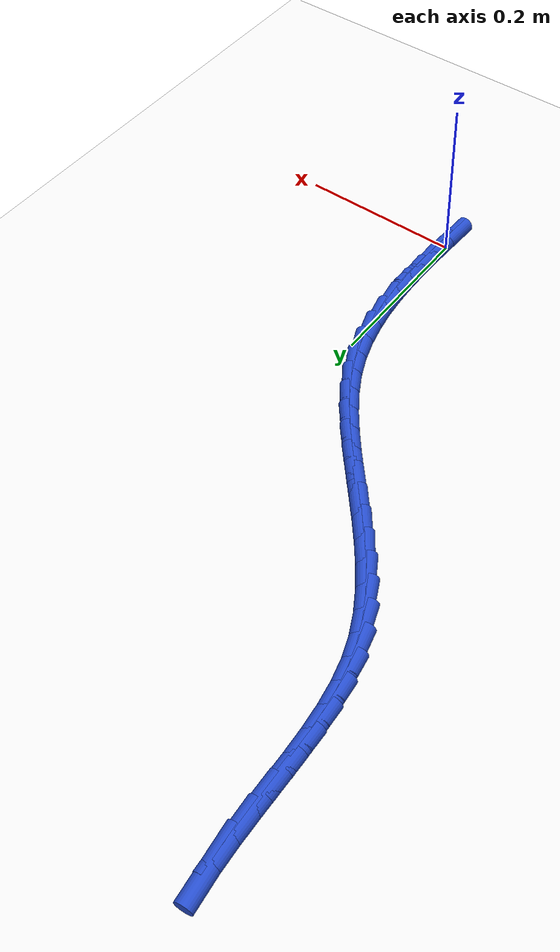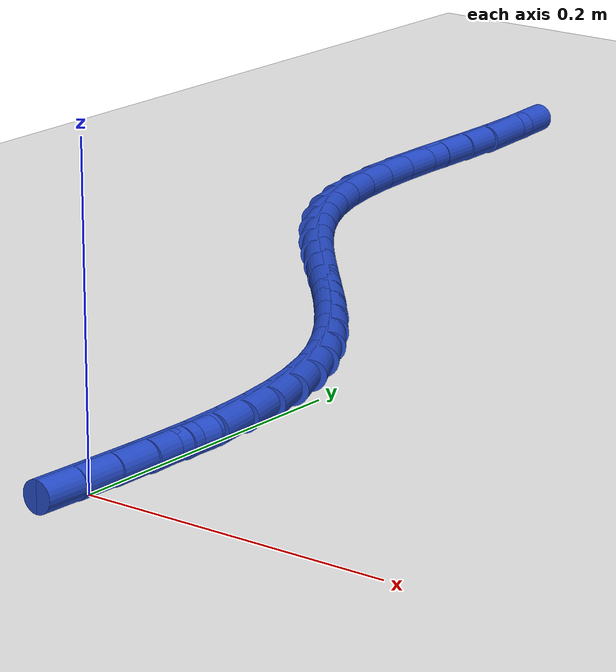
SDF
<sdf version="1.6">
 <world name="default">
  <model name="ground_plane">
   <static>1</static>
   <link name="link">
    <collision name="collision">
     <geometry><plane><normal>0 0 1</normal><size>100 100</size></plane></geometry>
     <surface><friction><ode><mu>100</mu><mu2>50</mu2></ode></friction></surface>
    </collision>
    <visual name="visual">
     <cast_shadows>0</cast_shadows>
     <geometry><plane><normal>0 0 1</normal><size>100 100</size></plane></geometry>
     <material>
      <script><uri>file://media/materials/scripts/gazebo.material</uri><name>Gazebo/WhiteGlow</name></script>
     </material>
    </visual>
   </link>
  </model>
  <model name="line">
   <link name="link_0">
    <pose>-3.577867169202165e-18 3.469446951953614e-17 0.01 0 1.57 1.5313810276846365</pose>
    <collision name="collision">
     <geometry><cylinder><radius>0.01</radius><length>0.08</length></cylinder></geometry>
    </collision>
    <visual name="visual">
     <material>
      <script><name>Gazebo/Blue</name><uri>file://media/materials/scripts/gazebo.material</uri></script>
     </material>
     <geometry><cylinder><radius>0.01</radius><length>0.08</length></cylinder></geometry>
    </visual>
   </link>
   <link name="link_1">
    <pose>0.0011078297223571646 0.02809203513526441 0.01 0 1.57 1.5508251258644656</pose>
    <collision name="collision">
     <geometry><cylinder><radius>0.01</radius><length>0.08</length></cylinder></geometry>
    </collision>
    <visual name="visual">
     <material>
      <script><name>Gazebo/Blue</name><uri>file://media/materials/scripts/gazebo.material</uri></script>
     </material>
     <geometry><cylinder><radius>0.01</radius><length>0.08</length></cylinder></geometry>
    </visual>
   </link>
   <link name="link_2">
    <pose>0.0016709253579382133 0.056283668287402444 0.01 0 1.57 -1.5616062555757853</pose>
    <collision name="collision">
     <geometry><cylinder><radius>0.01</radius><length>0.08</length></cylinder></geometry>
    </collision>
    <visual name="visual">
     <material>
      <script><name>Gazebo/Blue</name><uri>file://media/materials/scripts/gazebo.material</uri></script>
     </material>
     <geometry><cylinder><radius>0.01</radius><length>0.08</length></cylinder></geometry>
    </visual>
   </link>
   <link name="link_3">
    <pose>0.001412394904609176 0.08441437248474258 0.01 0 1.57 -1.5222109770309682</pose>
    <collision name="collision">
     <geometry><cylinder><radius>0.01</radius><length>0.08</length></cylinder></geometry>
    </collision>
    <visual name="visual">
     <material>
      <script><name>Gazebo/Blue</name><uri>file://media/materials/scripts/gazebo.material</uri></script>
     </material>
     <geometry><cylinder><radius>0.01</radius><length>0.08</length></cylinder></geometry>
    </visual>
   </link>
   <link name="link_4">
    <pose>5.5346360236090044e-05 0.11232362075561338 0.01 0 1.57 -1.4718567219086012</pose>
    <collision name="collision">
     <geometry><cylinder><radius>0.01</radius><length>0.08</length></cylinder></geometry>
    </collision>
    <visual name="visual">
     <material>
      <script><name>Gazebo/Blue</name><uri>file://media/materials/scripts/gazebo.material</uri></script>
     </material>
     <geometry><cylinder><radius>0.01</radius><length>0.08</length></cylinder></geometry>
    </visual>
   </link>
   <link name="link_5">
    <pose>-0.0026771122773150057 0.1398508861283433 0.01 0 1.57 -1.4097138829830382</pose>
    <collision name="collision">
     <geometry><cylinder><radius>0.01</radius><length>0.08</length></cylinder></geometry>
    </collision>
    <visual name="visual">
     <material>
      <script><name>Gazebo/Blue</name><uri>file://media/materials/scripts/gazebo.material</uri></script>
     </material>
     <geometry><cylinder><radius>0.01</radius><length>0.08</length></cylinder></geometry>
    </visual>
   </link>
   <link name="link_6">
    <pose>-0.00706187301017808 0.16683564163126086 0.01 0 1.57 -1.33502317986975</pose>
    <collision name="collision">
     <geometry><cylinder><radius>0.01</radius><length>0.08</length></cylinder></geometry>
    </collision>
    <visual name="visual">
     <material>
      <script><name>Gazebo/Blue</name><uri>file://media/materials/scripts/gazebo.material</uri></script>
     </material>
     <geometry><cylinder><radius>0.01</radius><length>0.08</length></cylinder></geometry>
    </visual>
   </link>
   <link name="link_7">
    <pose>-0.013375827840487098 0.1931173602926946 0.01 0 1.57 -1.2473711202386364</pose>
    <collision name="collision">
     <geometry><cylinder><radius>0.01</radius><length>0.08</length></cylinder></geometry>
    </collision>
    <visual name="visual">
     <material>
      <script><name>Gazebo/Blue</name><uri>file://media/materials/scripts/gazebo.material</uri></script>
     </material>
     <geometry><cylinder><radius>0.01</radius><length>0.08</length></cylinder></geometry>
    </visual>
   </link>
   <link name="link_8">
    <pose>-0.02189586877037602 0.21853551514097308 0.01 0 1.57 -1.147712825434415</pose>
    <collision name="collision">
     <geometry><cylinder><radius>0.01</radius><length>0.08</length></cylinder></geometry>
    </collision>
    <visual name="visual">
     <material>
      <script><name>Gazebo/Blue</name><uri>file://media/materials/scripts/gazebo.material</uri></script>
     </material>
     <geometry><cylinder><radius>0.01</radius><length>0.08</length></cylinder></geometry>
    </visual>
   </link>
   <link name="link_9">
    <pose>-0.0328832979421568 0.24293705310615804 0.01 0 1.57 -1.0514697278287726</pose>
    <collision name="collision">
     <geometry><cylinder><radius>0.01</radius><length>0.08</length></cylinder></geometry>
    </collision>
    <visual name="visual">
     <material>
      <script><name>Gazebo/Blue</name><uri>file://media/materials/scripts/gazebo.material</uri></script>
     </material>
     <geometry><cylinder><radius>0.01</radius><length>0.08</length></cylinder></geometry>
    </visual>
   </link>
   <link name="link_10">
    <pose>-0.04625783000817345 0.26633268085461137 0.01 0 1.57 -0.9733686503471793</pose>
    <collision name="collision">
     <geometry><cylinder><radius>0.01</radius><length>0.08</length></cylinder></geometry>
    </collision>
    <visual name="visual">
     <material>
      <script><name>Gazebo/Blue</name><uri>file://media/materials/scripts/gazebo.material</uri></script>
     </material>
     <geometry><cylinder><radius>0.01</radius><length>0.08</length></cylinder></geometry>
    </visual>
   </link>
   <link name="link_11">
    <pose>-0.06160676697657685 0.28889246629558135 0.01 0 1.57 -0.9136602222577828</pose>
    <collision name="collision">
     <geometry><cylinder><radius>0.01</radius><length>0.08</length></cylinder></geometry>
    </collision>
    <visual name="visual">
     <material>
      <script><name>Gazebo/Blue</name><uri>file://media/materials/scripts/gazebo.material</uri></script>
     </material>
     <geometry><cylinder><radius>0.01</radius><length>0.08</length></cylinder></geometry>
    </visual>
   </link>
   <link name="link_12">
    <pose>-0.07850365639127553 0.3107930713369355 0.01 0 1.57 -0.8713924782951618</pose>
    <collision name="collision">
     <geometry><cylinder><radius>0.01</radius><length>0.08</length></cylinder></geometry>
    </collision>
    <visual name="visual">
     <material>
      <script><name>Gazebo/Blue</name><uri>file://media/materials/scripts/gazebo.material</uri></script>
     </material>
     <geometry><cylinder><radius>0.01</radius><length>0.08</length></cylinder></geometry>
    </visual>
   </link>
   <link name="link_13">
    <pose>-0.0965220457961781 0.3322111578865413 0.01 0 1.57 -0.8455578197980537</pose>
    <collision name="collision">
     <geometry><cylinder><radius>0.01</radius><length>0.08</length></cylinder></geometry>
    </collision>
    <visual name="visual">
     <material>
      <script><name>Gazebo/Blue</name><uri>file://media/materials/scripts/gazebo.material</uri></script>
     </material>
     <geometry><cylinder><radius>0.01</radius><length>0.08</length></cylinder></geometry>
    </visual>
   </link>
   <link name="link_14">
    <pose>-0.11523548273519316 0.3533233878522667 0.01 0 1.57 -0.8354251950677716</pose>
    <collision name="collision">
     <geometry><cylinder><radius>0.01</radius><length>0.08</length></cylinder></geometry>
    </collision>
    <visual name="visual">
     <material>
      <script><name>Gazebo/Blue</name><uri>file://media/materials/scripts/gazebo.material</uri></script>
     </material>
     <geometry><cylinder><radius>0.01</radius><length>0.08</length></cylinder></geometry>
    </visual>
   </link>
   <link name="link_15">
    <pose>-0.13421751475222926 0.3743064231419791 0.01 0 1.57 -0.8407010361707644</pose>
    <collision name="collision">
     <geometry><cylinder><radius>0.01</radius><length>0.08</length></cylinder></geometry>
    </collision>
    <visual name="visual">
     <material>
      <script><name>Gazebo/Blue</name><uri>file://media/materials/scripts/gazebo.material</uri></script>
     </material>
     <geometry><cylinder><radius>0.01</radius><length>0.08</length></cylinder></geometry>
    </visual>
   </link>
   <link name="link_16">
    <pose>-0.15304168939119492 0.3953369256635461 0.01 0 1.57 -0.86158426462308</pose>
    <collision name="collision">
     <geometry><cylinder><radius>0.01</radius><length>0.08</length></cylinder></geometry>
    </collision>
    <visual name="visual">
     <material>
      <script><name>Gazebo/Blue</name><uri>file://media/materials/scripts/gazebo.material</uri></script>
     </material>
     <geometry><cylinder><radius>0.01</radius><length>0.08</length></cylinder></geometry>
    </visual>
   </link>
   <link name="link_17">
    <pose>-0.17128155419599891 0.4165915573248355 0.01 0 1.57 -0.8987427125662087</pose>
    <collision name="collision">
     <geometry><cylinder><radius>0.01</radius><length>0.08</length></cylinder></geometry>
    </collision>
    <visual name="visual">
     <material>
      <script><name>Gazebo/Blue</name><uri>file://media/materials/scripts/gazebo.material</uri></script>
     </material>
     <geometry><cylinder><radius>0.01</radius><length>0.08</length></cylinder></geometry>
    </visual>
   </link>
   <link name="link_18">
    <pose>-0.18851065671054962 0.4382469800337148 0.01 0 1.57 -0.953194710009889</pose>
    <collision name="collision">
     <geometry><cylinder><radius>0.01</radius><length>0.08</length></cylinder></geometry>
    </collision>
    <visual name="visual">
     <material>
      <script><name>Gazebo/Blue</name><uri>file://media/materials/scripts/gazebo.material</uri></script>
     </material>
     <geometry><cylinder><radius>0.01</radius><length>0.08</length></cylinder></geometry>
    </visual>
   </link>
   <link name="link_19">
    <pose>-0.2043025444787557 0.4604798556980516 0.01 0 1.57 -1.02603705719187</pose>
    <collision name="collision">
     <geometry><cylinder><radius>0.01</radius><length>0.08</length></cylinder></geometry>
    </collision>
    <visual name="visual">
     <material>
      <script><name>Gazebo/Blue</name><uri>file://media/materials/scripts/gazebo.material</uri></script>
     </material>
     <geometry><cylinder><radius>0.01</radius><length>0.08</length></cylinder></geometry>
    </visual>
   </link>
   <link name="link_20">
    <pose>-0.21823076504452577 0.4834668462257137 0.01 0 1.57 -1.117935692472783</pose>
    <collision name="collision">
     <geometry><cylinder><radius>0.01</radius><length>0.08</length></cylinder></geometry>
    </collision>
    <visual name="visual">
     <material>
      <script><name>Gazebo/Blue</name><uri>file://media/materials/scripts/gazebo.material</uri></script>
     </material>
     <geometry><cylinder><radius>0.01</radius><length>0.08</length></cylinder></geometry>
    </visual>
   </link>
   <link name="link_21">
    <pose>-0.22986886595176842 0.5073846135245685 0.01 0 1.57 -1.227947509923445</pose>
    <collision name="collision">
     <geometry><cylinder><radius>0.01</radius><length>0.08</length></cylinder></geometry>
    </collision>
    <visual name="visual">
     <material>
      <script><name>Gazebo/Blue</name><uri>file://media/materials/scripts/gazebo.material</uri></script>
     </material>
     <geometry><cylinder><radius>0.01</radius><length>0.08</length></cylinder></geometry>
    </visual>
   </link>
   <link name="link_22">
    <pose>-0.2388000736481412 0.5324058281903175 0.01 0 1.57 -1.3380263961916572</pose>
    <collision name="collision">
     <geometry><cylinder><radius>0.01</radius><length>0.08</length></cylinder></geometry>
    </collision>
    <visual name="visual">
     <material>
      <script><name>Gazebo/Blue</name><uri>file://media/materials/scripts/gazebo.material</uri></script>
     </material>
     <geometry><cylinder><radius>0.01</radius><length>0.08</length></cylinder></geometry>
    </visual>
   </link>
   <link name="link_23">
    <pose>-0.24499630632778177 0.5585428750944877 0.01 0 1.57 -1.4259828190099542</pose>
    <collision name="collision">
     <geometry><cylinder><radius>0.01</radius><length>0.08</length></cylinder></geometry>
    </collision>
    <visual name="visual">
     <material>
      <script><name>Gazebo/Blue</name><uri>file://media/materials/scripts/gazebo.material</uri></script>
     </material>
     <geometry><cylinder><radius>0.01</radius><length>0.08</length></cylinder></geometry>
    </visual>
   </link>
   <link name="link_24">
    <pose>-0.24894171413925217 0.5855969088200715 0.01 0 1.57 -1.4912136509066753</pose>
    <collision name="collision">
     <geometry><cylinder><radius>0.01</radius><length>0.08</length></cylinder></geometry>
    </collision>
    <visual name="visual">
     <material>
      <script><name>Gazebo/Blue</name><uri>file://media/materials/scripts/gazebo.material</uri></script>
     </material>
     <geometry><cylinder><radius>0.01</radius><length>0.08</length></cylinder></geometry>
    </visual>
   </link>
   <link name="link_25">
    <pose>-0.25115542565638815 0.6133546598150582 0.01 0 1.57 -1.5353701760550509</pose>
    <collision name="collision">
     <geometry><cylinder><radius>0.01</radius><length>0.08</length></cylinder></geometry>
    </collision>
    <visual name="visual">
     <material>
      <script><name>Gazebo/Blue</name><uri>file://media/materials/scripts/gazebo.material</uri></script>
     </material>
     <geometry><cylinder><radius>0.01</radius><length>0.08</length></cylinder></geometry>
    </visual>
   </link>
   <link name="link_26">
    <pose>-0.2521565694530258 0.6416028585274374 0.01 0 1.57 -1.5600096957454845</pose>
    <collision name="collision">
     <geometry><cylinder><radius>0.01</radius><length>0.08</length></cylinder></geometry>
    </collision>
    <visual name="visual">
     <material>
      <script><name>Gazebo/Blue</name><uri>file://media/materials/scripts/gazebo.material</uri></script>
     </material>
     <geometry><cylinder><radius>0.01</radius><length>0.08</length></cylinder></geometry>
    </visual>
   </link>
   <link name="link_27">
    <pose>-0.25246427410300076 0.6701282354051993 0.01 0 1.57 -1.5661304840900139</pose>
    <collision name="collision">
     <geometry><cylinder><radius>0.01</radius><length>0.08</length></cylinder></geometry>
    </collision>
    <visual name="visual">
     <material>
      <script><name>Gazebo/Blue</name><uri>file://media/materials/scripts/gazebo.material</uri></script>
     </material>
     <geometry><cylinder><radius>0.01</radius><length>0.08</length></cylinder></geometry>
    </visual>
   </link>
   <link name="link_28">
    <pose>-0.25259766818014906 0.698717520896333 0.01 0 1.57 -1.5539830959671757</pose>
    <collision name="collision">
     <geometry><cylinder><radius>0.01</radius><length>0.08</length></cylinder></geometry>
    </collision>
    <visual name="visual">
     <material>
      <script><name>Gazebo/Blue</name><uri>file://media/materials/scripts/gazebo.material</uri></script>
     </material>
     <geometry><cylinder><radius>0.01</radius><length>0.08</length></cylinder></geometry>
    </visual>
   </link>
   <link name="link_29">
    <pose>-0.2530758802583066 0.7271574454488289 0.01 0 1.57 -1.5230304079722372</pose>
    <collision name="collision">
     <geometry><cylinder><radius>0.01</radius><length>0.08</length></cylinder></geometry>
    </collision>
    <visual name="visual">
     <material>
      <script><name>Gazebo/Blue</name><uri>file://media/materials/scripts/gazebo.material</uri></script>
     </material>
     <geometry><cylinder><radius>0.01</radius><length>0.08</length></cylinder></geometry>
    </visual>
   </link>
   <link name="link_30">
    <pose>-0.2544180389113091 0.7552347395106762 0.01 0 1.57 -1.4720244002931444</pose>
    <collision name="collision">
     <geometry><cylinder><radius>0.01</radius><length>0.08</length></cylinder></geometry>
    </collision>
    <visual name="visual">
     <material>
      <script><name>Gazebo/Blue</name><uri>file://media/materials/scripts/gazebo.material</uri></script>
     </material>
     <geometry><cylinder><radius>0.01</radius><length>0.08</length></cylinder></geometry>
    </visual>
   </link>
   <link name="link_270">
    <pose>4.336808689942018e-18 1.734723475976807e-16 0.01 0 1.57 1.5294160724791885</pose>
    <collision name="collision">
     <geometry><cylinder><radius>0.01</radius><length>0.08</length></cylinder></geometry>
    </collision>
    <visual name="visual">
     <material>
      <script><name>Gazebo/Blue</name><uri>file://media/materials/scripts/gazebo.material</uri></script>
     </material>
     <geometry><cylinder><radius>0.01</radius><length>0.08</length></cylinder></geometry>
    </visual>
   </link>
   <link name="link_271">
    <pose>0.0011643881520653448 0.028122675696612868 0.01 0 1.57 1.5370486469861366</pose>
    <collision name="collision">
     <geometry><cylinder><radius>0.01</radius><length>0.08</length></cylinder></geometry>
    </collision>
    <visual name="visual">
     <material>
      <script><name>Gazebo/Blue</name><uri>file://media/materials/scripts/gazebo.material</uri></script>
     </material>
     <geometry><cylinder><radius>0.01</radius><length>0.08</length></cylinder></geometry>
    </visual>
   </link>
   <link name="link_272">
    <pose>0.002123392795603493 0.056528792778186315 0.01 0 1.57 1.533250947763274</pose>
    <collision name="collision">
     <geometry><cylinder><radius>0.01</radius><length>0.08</length></cylinder></geometry>
    </collision>
    <visual name="visual">
     <material>
      <script><name>Gazebo/Blue</name><uri>file://media/materials/scripts/gazebo.material</uri></script>
     </material>
     <geometry><cylinder><radius>0.01</radius><length>0.08</length></cylinder></geometry>
    </visual>
   </link>
  </model>
 </world>
</sdf>
